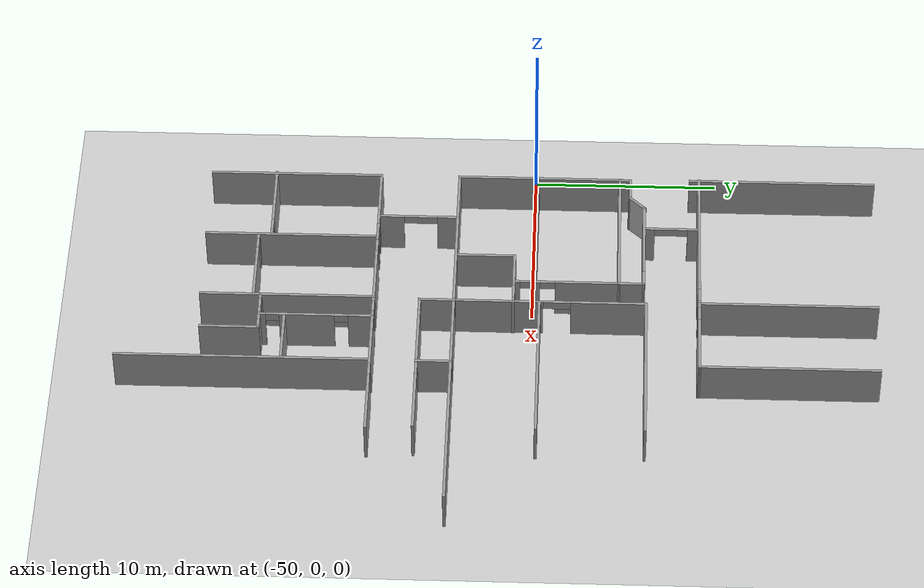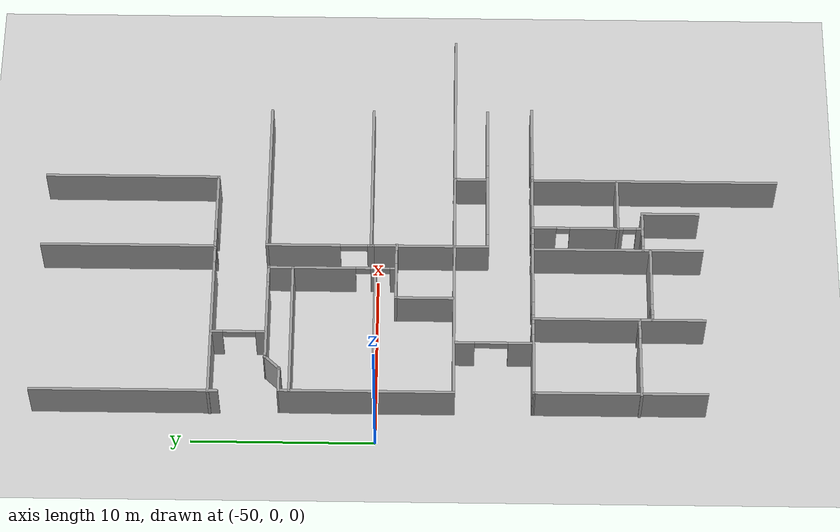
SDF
<sdf version="1.7">
 <world name="default">
  <model name="ground_plane">
   <static>1</static>
   <link name="link">
    <collision name="collision">
     <geometry><plane><normal>0 0 1</normal><size>100 100</size></plane></geometry>
     <surface>
      <contact><collide_bitmask>65535</collide_bitmask></contact>
      <friction><ode><mu>100</mu><mu2>50</mu2></ode></friction>
     </surface>
    </collision>
    <visual name="visual">
     <cast_shadows>0</cast_shadows>
     <geometry><plane><normal>0 0 1</normal><size>100 100</size></plane></geometry>
     <material>
      <script><uri>file://media/materials/scripts/gazebo.material</uri><name>Gazebo/Grey</name></script>
     </material>
    </visual>
   </link>
  </model>
  <model name="anglo_3_andar">
   <pose>-0.36557 -0.844839 0 0 -0 0</pose>
   <link name="Wall_120">
    <collision name="Wall_120_Collision">
     <geometry><box><size>9.75 0.15 2.5</size></box></geometry>
     <pose>0 0 1.25 0 -0 0</pose>
    </collision>
    <visual name="Wall_120_Visual">
     <pose>0 0 1.25 0 -0 0</pose>
     <geometry><box><size>9.75 0.15 2.5</size></box></geometry>
     <material>
      <script><uri>file://media/materials/scripts/gazebo.material</uri><name>Gazebo/Grey</name></script>
      <ambient>1 1 1 1</ambient>
     </material>
     <meta><layer>0</layer></meta>
    </visual>
    <pose>-34.2723 14.6737 0 0 -0 -1.5708</pose>
   </link>
   <link name="Wall_129">
    <collision name="Wall_129_Collision">
     <geometry><box><size>9.75 0.15 2.5</size></box></geometry>
     <pose>0 0 1.25 0 -0 0</pose>
    </collision>
    <visual name="Wall_129_Visual">
     <pose>0 0 1.25 0 -0 0</pose>
     <geometry><box><size>9.75 0.15 2.5</size></box></geometry>
     <material>
      <script><uri>file://media/materials/scripts/gazebo.material</uri><name>Gazebo/Grey</name></script>
      <ambient>1 1 1 1</ambient>
     </material>
     <meta><layer>0</layer></meta>
    </visual>
    <pose>-38.7623 14.6837 0 0 -0 -1.5708</pose>
   </link>
   <link name="Wall_134">
    <pose>-36.5173 9.87868 0 0 -0 -0.002227</pose>
    <visual name="Wall_134_Visual_0">
     <pose>-2.14494 0 1.25 0 -0 0</pose>
     <geometry><box><size>0.350134 0.15 2.5</size></box></geometry>
     <material>
      <script><uri>file://media/materials/scripts/gazebo.material</uri><name>Gazebo/Grey</name></script>
      <ambient>1 1 1 1</ambient>
     </material>
     <meta><layer>0</layer></meta>
    </visual>
    <collision name="Wall_134_Collision_0">
     <geometry><box><size>0.350134 0.15 2.5</size></box></geometry>
     <pose>-2.14494 0 1.25 0 -0 0</pose>
    </collision>
    <visual name="Wall_134_Visual_1">
     <pose>0.605067 0 1.25 0 -0 0</pose>
     <geometry><box><size>3.42988 0.15 2.5</size></box></geometry>
     <material>
      <script><uri>file://media/materials/scripts/gazebo.material</uri><name>Gazebo/Grey</name></script>
      <ambient>1 1 1 1</ambient>
     </material>
     <meta><layer>0</layer></meta>
    </visual>
    <collision name="Wall_134_Collision_1">
     <geometry><box><size>3.42988 0.15 2.5</size></box></geometry>
     <pose>0.605067 0 1.25 0 -0 0</pose>
    </collision>
    <visual name="Wall_134_Visual_2">
     <pose>-1.53987 0 2.25 0 -0 0</pose>
     <geometry><box><size>0.86 0.15 0.5</size></box></geometry>
     <material>
      <script><uri>file://media/materials/scripts/gazebo.material</uri><name>Gazebo/Grey</name></script>
      <ambient>1 1 1 1</ambient>
     </material>
     <meta><layer>0</layer></meta>
    </visual>
    <collision name="Wall_134_Collision_2">
     <geometry><box><size>0.86 0.15 0.5</size></box></geometry>
     <pose>-1.53987 0 2.25 0 -0 0</pose>
    </collision>
   </link>
   <link name="Wall_136">
    <collision name="Wall_136_Collision">
     <geometry><box><size>10.25 0.15 2.5</size></box></geometry>
     <pose>0 0 1.25 0 -0 0</pose>
    </collision>
    <visual name="Wall_136_Visual">
     <pose>0 0 1.25 0 -0 0</pose>
     <geometry><box><size>10.25 0.15 2.5</size></box></geometry>
     <material>
      <script><uri>file://media/materials/scripts/gazebo.material</uri><name>Gazebo/Grey</name></script>
      <ambient>1 1 1 1</ambient>
     </material>
     <meta><layer>0</layer></meta>
    </visual>
    <pose>-47.8223 14.4537 0 0 -0 -1.5708</pose>
   </link>
   <link name="Wall_141">
    <pose>-43.3123 9.88368 0 0 -0 3.14159</pose>
    <visual name="Wall_141_Visual_0">
     <pose>-4.4925 0 1.25 0 -0 0</pose>
     <geometry><box><size>0.265001 0.15 2.5</size></box></geometry>
     <material>
      <script><uri>file://media/materials/scripts/gazebo.material</uri><name>Gazebo/Grey</name></script>
      <ambient>1 1 1 1</ambient>
     </material>
     <meta><layer>0</layer></meta>
    </visual>
    <collision name="Wall_141_Collision_0">
     <geometry><box><size>0.265001 0.15 2.5</size></box></geometry>
     <pose>-4.4925 0 1.25 0 -0 0</pose>
    </collision>
    <visual name="Wall_141_Visual_1">
     <pose>0.552501 0 1.25 0 -0 0</pose>
     <geometry><box><size>8.145 0.15 2.5</size></box></geometry>
     <material>
      <script><uri>file://media/materials/scripts/gazebo.material</uri><name>Gazebo/Grey</name></script>
      <ambient>1 1 1 1</ambient>
     </material>
     <meta><layer>0</layer></meta>
    </visual>
    <collision name="Wall_141_Collision_1">
     <geometry><box><size>8.145 0.15 2.5</size></box></geometry>
     <pose>0.552501 0 1.25 0 -0 0</pose>
    </collision>
    <visual name="Wall_141_Visual_2">
     <pose>-3.94 0 2.25 0 -0 0</pose>
     <geometry><box><size>0.84 0.15 0.5</size></box></geometry>
     <material>
      <script><uri>file://media/materials/scripts/gazebo.material</uri><name>Gazebo/Grey</name></script>
      <ambient>1 1 1 1</ambient>
     </material>
     <meta><layer>0</layer></meta>
    </visual>
    <collision name="Wall_141_Collision_2">
     <geometry><box><size>0.84 0.15 0.5</size></box></geometry>
     <pose>-3.94 0 2.25 0 -0 0</pose>
    </collision>
   </link>
   <link name="Wall_143">
    <pose>-44.1623 8.42868 0 0 -0 -1.5708</pose>
    <visual name="Wall_143_Visual_0">
     <pose>-1.155 0 1.25 0 -0 0</pose>
     <geometry><box><size>0.69 0.15 2.5</size></box></geometry>
     <material>
      <script><uri>file://media/materials/scripts/gazebo.material</uri><name>Gazebo/Grey</name></script>
      <ambient>1 1 1 1</ambient>
     </material>
     <meta><layer>0</layer></meta>
    </visual>
    <collision name="Wall_143_Collision_0">
     <geometry><box><size>0.69 0.15 2.5</size></box></geometry>
     <pose>-1.155 0 1.25 0 -0 0</pose>
    </collision>
    <visual name="Wall_143_Visual_1">
     <pose>1.24 0 1.25 0 -0 0</pose>
     <geometry><box><size>0.52 0.15 2.5</size></box></geometry>
     <material>
      <script><uri>file://media/materials/scripts/gazebo.material</uri><name>Gazebo/Grey</name></script>
      <ambient>1 1 1 1</ambient>
     </material>
     <meta><layer>0</layer></meta>
    </visual>
    <collision name="Wall_143_Collision_1">
     <geometry><box><size>0.52 0.15 2.5</size></box></geometry>
     <pose>1.24 0 1.25 0 -0 0</pose>
    </collision>
    <visual name="Wall_143_Visual_2">
     <pose>0.085 0 2.25 0 -0 0</pose>
     <geometry><box><size>1.79 0.15 0.5</size></box></geometry>
     <material>
      <script><uri>file://media/materials/scripts/gazebo.material</uri><name>Gazebo/Grey</name></script>
      <ambient>1 1 1 1</ambient>
     </material>
     <meta><layer>0</layer></meta>
    </visual>
    <collision name="Wall_143_Collision_2">
     <geometry><box><size>1.79 0.15 0.5</size></box></geometry>
     <pose>0.085 0 2.25 0 -0 0</pose>
    </collision>
   </link>
   <link name="Wall_150">
    <pose>-42.8923 6.87368 0 0 -0 3.14159</pose>
    <visual name="Wall_150_Visual_0">
     <pose>-2.8225 0 1.25 0 -0 0</pose>
     <geometry><box><size>0.105 0.15 2.5</size></box></geometry>
     <material>
      <script><uri>file://media/materials/scripts/gazebo.material</uri><name>Gazebo/Grey</name></script>
      <ambient>1 1 1 1</ambient>
     </material>
     <meta><layer>0</layer></meta>
    </visual>
    <collision name="Wall_150_Collision_0">
     <geometry><box><size>0.105 0.15 2.5</size></box></geometry>
     <pose>-2.8225 0 1.25 0 -0 0</pose>
    </collision>
    <visual name="Wall_150_Visual_1">
     <pose>0.5025 0 1.25 0 -0 0</pose>
     <geometry><box><size>4.745 0.15 2.5</size></box></geometry>
     <material>
      <script><uri>file://media/materials/scripts/gazebo.material</uri><name>Gazebo/Grey</name></script>
      <ambient>1 1 1 1</ambient>
     </material>
     <meta><layer>0</layer></meta>
    </visual>
    <collision name="Wall_150_Collision_1">
     <geometry><box><size>4.745 0.15 2.5</size></box></geometry>
     <pose>0.5025 0 1.25 0 -0 0</pose>
    </collision>
    <visual name="Wall_150_Visual_2">
     <pose>-2.32 0 2.25 0 -0 0</pose>
     <geometry><box><size>0.9 0.15 0.5</size></box></geometry>
     <material>
      <script><uri>file://media/materials/scripts/gazebo.material</uri><name>Gazebo/Grey</name></script>
      <ambient>1 1 1 1</ambient>
     </material>
     <meta><layer>0</layer></meta>
    </visual>
    <collision name="Wall_150_Collision_2">
     <geometry><box><size>0.9 0.15 0.5</size></box></geometry>
     <pose>-2.32 0 2.25 0 -0 0</pose>
    </collision>
   </link>
   <link name="Wall_151">
    <collision name="Wall_151_Collision">
     <geometry><box><size>1.21523 0.15 2.5</size></box></geometry>
     <pose>0 0 1.25 0 -0 0</pose>
    </collision>
    <visual name="Wall_151_Visual">
     <pose>0 0 1.25 0 -0 0</pose>
     <geometry><box><size>1.21523 0.15 2.5</size></box></geometry>
     <material>
      <script><uri>file://media/materials/scripts/gazebo.material</uri><name>Gazebo/Grey</name></script>
      <ambient>1 1 1 1</ambient>
     </material>
     <meta><layer>0</layer></meta>
    </visual>
    <pose>-46.0562 6.48477 0 0 -0 -2.323</pose>
   </link>
   <link name="Wall_152">
    <collision name="Wall_152_Collision">
     <geometry><box><size>1.5 0.15 2.5</size></box></geometry>
     <pose>0 0 1.25 0 -0 0</pose>
    </collision>
    <visual name="Wall_152_Visual">
     <pose>0 0 1.25 0 -0 0</pose>
     <geometry><box><size>1.5 0.15 2.5</size></box></geometry>
     <material>
      <script><uri>file://media/materials/scripts/gazebo.material</uri><name>Gazebo/Grey</name></script>
      <ambient>1 1 1 1</ambient>
     </material>
     <meta><layer>0</layer></meta>
    </visual>
    <pose>-47.0851 6.09586 0 0 -0 3.14159</pose>
   </link>
   <link name="Wall_154">
    <collision name="Wall_154_Collision">
     <geometry><box><size>1.49015 0.15 2.5</size></box></geometry>
     <pose>0 0 1.25 0 -0 0</pose>
    </collision>
    <visual name="Wall_154_Visual">
     <pose>0 0 1.25 0 -0 0</pose>
     <geometry><box><size>1.49015 0.15 2.5</size></box></geometry>
     <material>
      <script><uri>file://media/materials/scripts/gazebo.material</uri><name>Gazebo/Grey</name></script>
      <ambient>1 1 1 1</ambient>
     </material>
     <meta><layer>0</layer></meta>
    </visual>
    <pose>-40.0923 6.20368 0 0 -0 -1.5708</pose>
   </link>
   <link name="Wall_157">
    <collision name="Wall_157_Collision">
     <geometry><box><size>7.81003 0.15 2.5</size></box></geometry>
     <pose>0 0 1.25 0 -0 0</pose>
    </collision>
    <visual name="Wall_157_Visual">
     <pose>0 0 1.25 0 -0 0</pose>
     <geometry><box><size>7.81003 0.15 2.5</size></box></geometry>
     <material>
      <script><uri>file://media/materials/scripts/gazebo.material</uri><name>Gazebo/Grey</name></script>
      <ambient>1 1 1 1</ambient>
     </material>
     <meta><layer>0</layer></meta>
    </visual>
    <pose>-43.9223 5.52368 0 0 -0 0.002611</pose>
   </link>
   <link name="Wall_160">
    <collision name="Wall_160_Collision">
     <geometry><box><size>5.25001 0.15 2.5</size></box></geometry>
     <pose>0 0 1.25 0 -0 0</pose>
    </collision>
    <visual name="Wall_160_Visual">
     <pose>0 0 1.25 0 -0 0</pose>
     <geometry><box><size>5.25001 0.15 2.5</size></box></geometry>
     <material>
      <script><uri>file://media/materials/scripts/gazebo.material</uri><name>Gazebo/Grey</name></script>
      <ambient>1 1 1 1</ambient>
     </material>
     <meta><layer>0</layer></meta>
    </visual>
    <pose>-47.7651 3.54586 0 0 -0 -1.57276</pose>
   </link>
   <link name="Wall_164">
    <collision name="Wall_164_Collision">
     <geometry><box><size>7.76 0.15 2.5</size></box></geometry>
     <pose>0 0 1.25 0 -0 0</pose>
    </collision>
    <visual name="Wall_164_Visual">
     <pose>0 0 1.25 0 -0 0</pose>
     <geometry><box><size>7.76 0.15 2.5</size></box></geometry>
     <material>
      <script><uri>file://media/materials/scripts/gazebo.material</uri><name>Gazebo/Grey</name></script>
      <ambient>1 1 1 1</ambient>
     </material>
     <meta><layer>0</layer></meta>
    </visual>
    <pose>-43.9651 0.995863 0 0 -0 0</pose>
   </link>
   <link name="Wall_172">
    <collision name="Wall_172_Collision">
     <geometry><box><size>22.77 0.15 2.5</size></box></geometry>
     <pose>0 0 1.25 0 -0 0</pose>
    </collision>
    <visual name="Wall_172_Visual">
     <pose>0 0 1.25 0 -0 0</pose>
     <geometry><box><size>22.77 0.15 2.5</size></box></geometry>
     <material>
      <script><uri>file://media/materials/scripts/gazebo.material</uri><name>Gazebo/Grey</name></script>
      <ambient>1 1 1 1</ambient>
     </material>
     <meta><layer>0</layer></meta>
    </visual>
    <pose>-36.3901 -3.36414 0 0 -0 -0.000884</pose>
   </link>
   <link name="Wall_175">
    <pose>-40.2673 -0.15632 0 0 -0 3.14159</pose>
    <visual name="Wall_175_Visual_0">
     <pose>-1.535 0 1.25 0 -0 0</pose>
     <geometry><box><size>0.429998 0.15 2.5</size></box></geometry>
     <material>
      <script><uri>file://media/materials/scripts/gazebo.material</uri><name>Gazebo/Grey</name></script>
      <ambient>1 1 1 1</ambient>
     </material>
     <meta><layer>0</layer></meta>
    </visual>
    <collision name="Wall_175_Collision_0">
     <geometry><box><size>0.429998 0.15 2.5</size></box></geometry>
     <pose>-1.535 0 1.25 0 -0 0</pose>
    </collision>
    <visual name="Wall_175_Visual_1">
     <pose>0.634999 0 1.25 0 -0 0</pose>
     <geometry><box><size>2.23 0.15 2.5</size></box></geometry>
     <material>
      <script><uri>file://media/materials/scripts/gazebo.material</uri><name>Gazebo/Grey</name></script>
      <ambient>1 1 1 1</ambient>
     </material>
     <meta><layer>0</layer></meta>
    </visual>
    <collision name="Wall_175_Collision_1">
     <geometry><box><size>2.23 0.15 2.5</size></box></geometry>
     <pose>0.634999 0 1.25 0 -0 0</pose>
    </collision>
    <visual name="Wall_175_Visual_2">
     <pose>-0.900002 0 2.25 0 -0 0</pose>
     <geometry><box><size>0.84 0.15 0.5</size></box></geometry>
     <material>
      <script><uri>file://media/materials/scripts/gazebo.material</uri><name>Gazebo/Grey</name></script>
      <ambient>1 1 1 1</ambient>
     </material>
     <meta><layer>0</layer></meta>
    </visual>
    <collision name="Wall_175_Collision_2">
     <geometry><box><size>0.84 0.15 0.5</size></box></geometry>
     <pose>-0.900002 0 2.25 0 -0 0</pose>
    </collision>
   </link>
   <link name="Wall_176">
    <collision name="Wall_176_Collision">
     <geometry><box><size>3.25 0.15 2.5</size></box></geometry>
     <pose>0 0 1.25 0 -0 0</pose>
    </collision>
    <visual name="Wall_176_Visual">
     <pose>0 0 1.25 0 -0 0</pose>
     <geometry><box><size>3.25 0.15 2.5</size></box></geometry>
     <material>
      <script><uri>file://media/materials/scripts/gazebo.material</uri><name>Gazebo/Grey</name></script>
      <ambient>1 1 1 1</ambient>
     </material>
     <meta><layer>0</layer></meta>
    </visual>
    <pose>-41.9423 -1.70632 0 0 -0 -1.5708</pose>
   </link>
   <link name="Wall_180">
    <pose>-40.0923 2.73368 0 0 -0 -1.5708</pose>
    <visual name="Wall_180_Visual_0">
     <pose>-1.105 0 1.25 0 -0 0</pose>
     <geometry><box><size>3.54 0.15 2.5</size></box></geometry>
     <material>
      <script><uri>file://media/materials/scripts/gazebo.material</uri><name>Gazebo/Grey</name></script>
      <ambient>1 1 1 1</ambient>
     </material>
     <meta><layer>0</layer></meta>
    </visual>
    <collision name="Wall_180_Collision_0">
     <geometry><box><size>3.54 0.15 2.5</size></box></geometry>
     <pose>-1.105 0 1.25 0 -0 0</pose>
    </collision>
    <visual name="Wall_180_Visual_1">
     <pose>1.635 0 1.25 0 -0 0</pose>
     <geometry><box><size>0.32 0.15 2.5</size></box></geometry>
     <material>
      <script><uri>file://media/materials/scripts/gazebo.material</uri><name>Gazebo/Grey</name></script>
      <ambient>1 1 1 1</ambient>
     </material>
     <meta><layer>0</layer></meta>
    </visual>
    <collision name="Wall_180_Collision_1">
     <geometry><box><size>0.32 0.15 2.5</size></box></geometry>
     <pose>1.635 0 1.25 0 -0 0</pose>
    </collision>
    <visual name="Wall_180_Visual_2">
     <pose>2.71 0 1.25 0 -0 0</pose>
     <geometry><box><size>0.33 0.15 2.5</size></box></geometry>
     <material>
      <script><uri>file://media/materials/scripts/gazebo.material</uri><name>Gazebo/Grey</name></script>
      <ambient>1 1 1 1</ambient>
     </material>
     <meta><layer>0</layer></meta>
    </visual>
    <collision name="Wall_180_Collision_2">
     <geometry><box><size>0.33 0.15 2.5</size></box></geometry>
     <pose>2.71 0 1.25 0 -0 0</pose>
    </collision>
    <visual name="Wall_180_Visual_3">
     <pose>1.07 0 2.25 0 -0 0</pose>
     <geometry><box><size>0.81 0.15 0.5</size></box></geometry>
     <material>
      <script><uri>file://media/materials/scripts/gazebo.material</uri><name>Gazebo/Grey</name></script>
      <ambient>1 1 1 1</ambient>
     </material>
     <meta><layer>0</layer></meta>
    </visual>
    <collision name="Wall_180_Collision_3">
     <geometry><box><size>0.81 0.15 0.5</size></box></geometry>
     <pose>1.07 0 2.25 0 -0 0</pose>
    </collision>
    <visual name="Wall_180_Visual_4">
     <pose>2.17 0 2.25 0 -0 0</pose>
     <geometry><box><size>0.75 0.15 0.5</size></box></geometry>
     <material>
      <script><uri>file://media/materials/scripts/gazebo.material</uri><name>Gazebo/Grey</name></script>
      <ambient>1 1 1 1</ambient>
     </material>
     <meta><layer>0</layer></meta>
    </visual>
    <collision name="Wall_180_Collision_4">
     <geometry><box><size>0.75 0.15 0.5</size></box></geometry>
     <pose>2.17 0 2.25 0 -0 0</pose>
    </collision>
   </link>
   <link name="Wall_185">
    <collision name="Wall_185_Collision">
     <geometry><box><size>4.75 0.15 2.5</size></box></geometry>
     <pose>0 0 1.25 0 -0 0</pose>
    </collision>
    <visual name="Wall_185_Visual">
     <pose>0 0 1.25 0 -0 0</pose>
     <geometry><box><size>4.75 0.15 2.5</size></box></geometry>
     <material>
      <script><uri>file://media/materials/scripts/gazebo.material</uri><name>Gazebo/Grey</name></script>
      <ambient>1 1 1 1</ambient>
     </material>
     <meta><layer>0</layer></meta>
    </visual>
    <pose>-38.6423 -1.04632 0 0 -0 -1.5708</pose>
   </link>
   <link name="Wall_187">
    <collision name="Wall_187_Collision">
     <geometry><box><size>9 0.15 2.5</size></box></geometry>
     <pose>0 0 1.25 0 -0 0</pose>
    </collision>
    <visual name="Wall_187_Visual">
     <pose>0 0 1.25 0 -0 0</pose>
     <geometry><box><size>9 0.15 2.5</size></box></geometry>
     <material>
      <script><uri>file://media/materials/scripts/gazebo.material</uri><name>Gazebo/Grey</name></script>
      <ambient>1 1 1 1</ambient>
     </material>
     <meta><layer>0</layer></meta>
    </visual>
    <pose>-34.2173 1.25368 0 0 -0 0</pose>
   </link>
   <link name="Wall_191">
    <pose>-38.6523 4.08868 0 0 -0 -1.5708</pose>
    <visual name="Wall_191_Visual_0">
     <pose>-0.93 0 1.25 0 -0 0</pose>
     <geometry><box><size>4.14 0.15 2.5</size></box></geometry>
     <material>
      <script><uri>file://media/materials/scripts/gazebo.material</uri><name>Gazebo/Grey</name></script>
      <ambient>1 1 1 1</ambient>
     </material>
     <meta><layer>0</layer></meta>
    </visual>
    <collision name="Wall_191_Collision_0">
     <geometry><box><size>4.14 0.15 2.5</size></box></geometry>
     <pose>-0.93 0 1.25 0 -0 0</pose>
    </collision>
    <visual name="Wall_191_Visual_1">
     <pose>2.815 0 1.25 0 -0 0</pose>
     <geometry><box><size>0.37 0.15 2.5</size></box></geometry>
     <material>
      <script><uri>file://media/materials/scripts/gazebo.material</uri><name>Gazebo/Grey</name></script>
      <ambient>1 1 1 1</ambient>
     </material>
     <meta><layer>0</layer></meta>
    </visual>
    <collision name="Wall_191_Collision_1">
     <geometry><box><size>0.37 0.15 2.5</size></box></geometry>
     <pose>2.815 0 1.25 0 -0 0</pose>
    </collision>
    <visual name="Wall_191_Visual_2">
     <pose>1.885 0 2.25 0 -0 0</pose>
     <geometry><box><size>1.49 0.15 0.5</size></box></geometry>
     <material>
      <script><uri>file://media/materials/scripts/gazebo.material</uri><name>Gazebo/Grey</name></script>
      <ambient>1 1 1 1</ambient>
     </material>
     <meta><layer>0</layer></meta>
    </visual>
    <collision name="Wall_191_Collision_2">
     <geometry><box><size>1.49 0.15 0.5</size></box></geometry>
     <pose>1.885 0 2.25 0 -0 0</pose>
    </collision>
   </link>
   <link name="Wall_193">
    <collision name="Wall_193_Collision">
     <geometry><box><size>9 0.15 2.5</size></box></geometry>
     <pose>0 0 1.25 0 -0 0</pose>
    </collision>
    <visual name="Wall_193_Visual">
     <pose>0 0 1.25 0 -0 0</pose>
     <geometry><box><size>9 0.15 2.5</size></box></geometry>
     <material>
      <script><uri>file://media/materials/scripts/gazebo.material</uri><name>Gazebo/Grey</name></script>
      <ambient>1 1 1 1</ambient>
     </material>
     <meta><layer>0</layer></meta>
    </visual>
    <pose>-34.2273 7.01368 0 0 -0 0</pose>
   </link>
   <link name="Wall_209">
    <collision name="Wall_209_Collision">
     <geometry><box><size>2 0.15 2.5</size></box></geometry>
     <pose>0 0 1.25 0 -0 0</pose>
    </collision>
    <visual name="Wall_209_Visual">
     <pose>0 0 1.25 0 -0 0</pose>
     <geometry><box><size>2 0.15 2.5</size></box></geometry>
     <material>
      <script><uri>file://media/materials/scripts/gazebo.material</uri><name>Gazebo/Grey</name></script>
      <ambient>1 1 1 1</ambient>
     </material>
     <meta><layer>0</layer></meta>
    </visual>
    <pose>-38.6423 -4.27132 0 0 -0 -1.5708</pose>
   </link>
   <link name="Wall_212">
    <pose>-34.2173 -5.19632 0 0 -0 0</pose>
    <visual name="Wall_212_Visual_0">
     <pose>-4.435 0 1.25 0 -0 0</pose>
     <geometry><box><size>0.130001 0.15 2.5</size></box></geometry>
     <material>
      <script><uri>file://media/materials/scripts/gazebo.material</uri><name>Gazebo/Grey</name></script>
      <ambient>1 1 1 1</ambient>
     </material>
     <meta><layer>0</layer></meta>
    </visual>
    <collision name="Wall_212_Collision_0">
     <geometry><box><size>0.130001 0.15 2.5</size></box></geometry>
     <pose>-4.435 0 1.25 0 -0 0</pose>
    </collision>
    <visual name="Wall_212_Visual_1">
     <pose>-1.765 0 1.25 0 -0 0</pose>
     <geometry><box><size>3.71 0.15 2.5</size></box></geometry>
     <material>
      <script><uri>file://media/materials/scripts/gazebo.material</uri><name>Gazebo/Grey</name></script>
      <ambient>1 1 1 1</ambient>
     </material>
     <meta><layer>0</layer></meta>
    </visual>
    <collision name="Wall_212_Collision_1">
     <geometry><box><size>3.71 0.15 2.5</size></box></geometry>
     <pose>-1.765 0 1.25 0 -0 0</pose>
    </collision>
    <visual name="Wall_212_Visual_2">
     <pose>2.68 0 1.25 0 -0 0</pose>
     <geometry><box><size>3.64 0.15 2.5</size></box></geometry>
     <material>
      <script><uri>file://media/materials/scripts/gazebo.material</uri><name>Gazebo/Grey</name></script>
      <ambient>1 1 1 1</ambient>
     </material>
     <meta><layer>0</layer></meta>
    </visual>
    <collision name="Wall_212_Collision_2">
     <geometry><box><size>3.64 0.15 2.5</size></box></geometry>
     <pose>2.68 0 1.25 0 -0 0</pose>
    </collision>
    <visual name="Wall_212_Visual_3">
     <pose>-3.995 0 2.25 0 -0 0</pose>
     <geometry><box><size>0.75 0.15 0.5</size></box></geometry>
     <material>
      <script><uri>file://media/materials/scripts/gazebo.material</uri><name>Gazebo/Grey</name></script>
      <ambient>1 1 1 1</ambient>
     </material>
     <meta><layer>0</layer></meta>
    </visual>
    <collision name="Wall_212_Collision_3">
     <geometry><box><size>0.75 0.15 0.5</size></box></geometry>
     <pose>-3.995 0 2.25 0 -0 0</pose>
    </collision>
    <visual name="Wall_212_Visual_4">
     <pose>0.475002 0 2.25 0 -0 0</pose>
     <geometry><box><size>0.77 0.15 0.5</size></box></geometry>
     <material>
      <script><uri>file://media/materials/scripts/gazebo.material</uri><name>Gazebo/Grey</name></script>
      <ambient>1 1 1 1</ambient>
     </material>
     <meta><layer>0</layer></meta>
    </visual>
    <collision name="Wall_212_Collision_4">
     <geometry><box><size>0.77 0.15 0.5</size></box></geometry>
     <pose>0.475002 0 2.25 0 -0 0</pose>
    </collision>
   </link>
   <link name="Wall_215">
    <collision name="Wall_215_Collision">
     <geometry><box><size>2 0.15 2.5</size></box></geometry>
     <pose>0 0 1.25 0 -0 0</pose>
    </collision>
    <visual name="Wall_215_Visual">
     <pose>0 0 1.25 0 -0 0</pose>
     <geometry><box><size>2 0.15 2.5</size></box></geometry>
     <material>
      <script><uri>file://media/materials/scripts/gazebo.material</uri><name>Gazebo/Grey</name></script>
      <ambient>1 1 1 1</ambient>
     </material>
     <meta><layer>0</layer></meta>
    </visual>
    <pose>-34.2723 -4.28132 0 0 -0 -1.5708</pose>
   </link>
   <link name="Wall_275">
    <collision name="Wall_275_Collision">
     <geometry><box><size>4.5 0.15 2.5</size></box></geometry>
     <pose>0 0 1.25 0 -0 0</pose>
    </collision>
    <visual name="Wall_275_Visual">
     <pose>0 0 1.25 0 -0 0</pose>
     <geometry><box><size>4.5 0.15 2.5</size></box></geometry>
     <material>
      <script><uri>file://media/materials/scripts/gazebo.material</uri><name>Gazebo/Grey</name></script>
      <ambient>1 1 1 1</ambient>
     </material>
     <meta><layer>0</layer></meta>
    </visual>
    <pose>-47.7701 -1.17914 0 0 -0 -1.5708</pose>
   </link>
   <link name="Wall_277">
    <pose>-44.7023 -5.50632 0 0 -0 -1.5708</pose>
    <visual name="Wall_277_Visual_0">
     <pose>-1.575 0 1.25 0 -0 0</pose>
     <geometry><box><size>1.1 0.15 2.5</size></box></geometry>
     <material>
      <script><uri>file://media/materials/scripts/gazebo.material</uri><name>Gazebo/Grey</name></script>
      <ambient>1 1 1 1</ambient>
     </material>
     <meta><layer>0</layer></meta>
    </visual>
    <collision name="Wall_277_Collision_0">
     <geometry><box><size>1.1 0.15 2.5</size></box></geometry>
     <pose>-1.575 0 1.25 0 -0 0</pose>
    </collision>
    <visual name="Wall_277_Visual_1">
     <pose>1.46 0 1.25 0 -0 0</pose>
     <geometry><box><size>1.33 0.15 2.5</size></box></geometry>
     <material>
      <script><uri>file://media/materials/scripts/gazebo.material</uri><name>Gazebo/Grey</name></script>
      <ambient>1 1 1 1</ambient>
     </material>
     <meta><layer>0</layer></meta>
    </visual>
    <collision name="Wall_277_Collision_1">
     <geometry><box><size>1.33 0.15 2.5</size></box></geometry>
     <pose>1.46 0 1.25 0 -0 0</pose>
    </collision>
    <visual name="Wall_277_Visual_2">
     <pose>-0.115 0 2.25 0 -0 0</pose>
     <geometry><box><size>1.82 0.15 0.5</size></box></geometry>
     <material>
      <script><uri>file://media/materials/scripts/gazebo.material</uri><name>Gazebo/Grey</name></script>
      <ambient>1 1 1 1</ambient>
     </material>
     <meta><layer>0</layer></meta>
    </visual>
    <collision name="Wall_277_Collision_2">
     <geometry><box><size>1.82 0.15 0.5</size></box></geometry>
     <pose>-0.115 0 2.25 0 -0 0</pose>
    </collision>
   </link>
   <link name="Wall_285">
    <pose>-38.7023 -7.68632 0 0 -0 3.14159</pose>
    <visual name="Wall_285_Visual_0">
     <pose>-7.2925 0 1.25 0 -0 0</pose>
     <geometry><box><size>3.665 0.15 2.5</size></box></geometry>
     <material>
      <script><uri>file://media/materials/scripts/gazebo.material</uri><name>Gazebo/Grey</name></script>
      <ambient>1 1 1 1</ambient>
     </material>
     <meta><layer>0</layer></meta>
    </visual>
    <collision name="Wall_285_Collision_0">
     <geometry><box><size>3.665 0.15 2.5</size></box></geometry>
     <pose>-7.2925 0 1.25 0 -0 0</pose>
    </collision>
    <visual name="Wall_285_Visual_1">
     <pose>-2.8175 0 1.25 0 -0 0</pose>
     <geometry><box><size>3.705 0.15 2.5</size></box></geometry>
     <material>
      <script><uri>file://media/materials/scripts/gazebo.material</uri><name>Gazebo/Grey</name></script>
      <ambient>1 1 1 1</ambient>
     </material>
     <meta><layer>0</layer></meta>
    </visual>
    <collision name="Wall_285_Collision_1">
     <geometry><box><size>3.705 0.15 2.5</size></box></geometry>
     <pose>-2.8175 0 1.25 0 -0 0</pose>
    </collision>
    <visual name="Wall_285_Visual_2">
     <pose>1.585 0 1.25 0 -0 0</pose>
     <geometry><box><size>3.68 0.15 2.5</size></box></geometry>
     <material>
      <script><uri>file://media/materials/scripts/gazebo.material</uri><name>Gazebo/Grey</name></script>
      <ambient>1 1 1 1</ambient>
     </material>
     <meta><layer>0</layer></meta>
    </visual>
    <collision name="Wall_285_Collision_2">
     <geometry><box><size>3.68 0.15 2.5</size></box></geometry>
     <pose>1.585 0 1.25 0 -0 0</pose>
    </collision>
    <visual name="Wall_285_Visual_3">
     <pose>4.49 0 1.25 0 -0 0</pose>
     <geometry><box><size>0.550004 0.15 2.5</size></box></geometry>
     <material>
      <script><uri>file://media/materials/scripts/gazebo.material</uri><name>Gazebo/Grey</name></script>
      <ambient>1 1 1 1</ambient>
     </material>
     <meta><layer>0</layer></meta>
    </visual>
    <collision name="Wall_285_Collision_3">
     <geometry><box><size>0.550004 0.15 2.5</size></box></geometry>
     <pose>4.49 0 1.25 0 -0 0</pose>
    </collision>
    <visual name="Wall_285_Visual_4">
     <pose>7.285 0 1.25 0 -0 0</pose>
     <geometry><box><size>3.68 0.15 2.5</size></box></geometry>
     <material>
      <script><uri>file://media/materials/scripts/gazebo.material</uri><name>Gazebo/Grey</name></script>
      <ambient>1 1 1 1</ambient>
     </material>
     <meta><layer>0</layer></meta>
    </visual>
    <collision name="Wall_285_Collision_4">
     <geometry><box><size>3.68 0.15 2.5</size></box></geometry>
     <pose>7.285 0 1.25 0 -0 0</pose>
    </collision>
    <visual name="Wall_285_Visual_5">
     <pose>-5.065 0 2.25 0 -0 0</pose>
     <geometry><box><size>0.79 0.15 0.5</size></box></geometry>
     <material>
      <script><uri>file://media/materials/scripts/gazebo.material</uri><name>Gazebo/Grey</name></script>
      <ambient>1 1 1 1</ambient>
     </material>
     <meta><layer>0</layer></meta>
    </visual>
    <collision name="Wall_285_Collision_5">
     <geometry><box><size>0.79 0.15 0.5</size></box></geometry>
     <pose>-5.065 0 2.25 0 -0 0</pose>
    </collision>
    <visual name="Wall_285_Visual_6">
     <pose>-0.609997 0 2.25 0 -0 0</pose>
     <geometry><box><size>0.71 0.15 0.5</size></box></geometry>
     <material>
      <script><uri>file://media/materials/scripts/gazebo.material</uri><name>Gazebo/Grey</name></script>
      <ambient>1 1 1 1</ambient>
     </material>
     <meta><layer>0</layer></meta>
    </visual>
    <collision name="Wall_285_Collision_6">
     <geometry><box><size>0.71 0.15 0.5</size></box></geometry>
     <pose>-0.609997 0 2.25 0 -0 0</pose>
    </collision>
    <visual name="Wall_285_Visual_7">
     <pose>3.82 0 2.25 0 -0 0</pose>
     <geometry><box><size>0.79 0.15 0.5</size></box></geometry>
     <material>
      <script><uri>file://media/materials/scripts/gazebo.material</uri><name>Gazebo/Grey</name></script>
      <ambient>1 1 1 1</ambient>
     </material>
     <meta><layer>0</layer></meta>
    </visual>
    <collision name="Wall_285_Collision_7">
     <geometry><box><size>0.79 0.15 0.5</size></box></geometry>
     <pose>3.82 0 2.25 0 -0 0</pose>
    </collision>
    <visual name="Wall_285_Visual_8">
     <pose>5.105 0 2.25 0 -0 0</pose>
     <geometry><box><size>0.68 0.15 0.5</size></box></geometry>
     <material>
      <script><uri>file://media/materials/scripts/gazebo.material</uri><name>Gazebo/Grey</name></script>
      <ambient>1 1 1 1</ambient>
     </material>
     <meta><layer>0</layer></meta>
    </visual>
    <collision name="Wall_285_Collision_8">
     <geometry><box><size>0.68 0.15 0.5</size></box></geometry>
     <pose>5.105 0 2.25 0 -0 0</pose>
    </collision>
   </link>
   <link name="Wall_287">
    <collision name="Wall_287_Collision">
     <geometry><box><size>9.48002 0.15 2.5</size></box></geometry>
     <pose>0 0 1.25 0 -0 0</pose>
    </collision>
    <visual name="Wall_287_Visual">
     <pose>0 0 1.25 0 -0 0</pose>
     <geometry><box><size>9.48002 0.15 2.5</size></box></geometry>
     <material>
      <script><uri>file://media/materials/scripts/gazebo.material</uri><name>Gazebo/Grey</name></script>
      <ambient>1 1 1 1</ambient>
     </material>
     <meta><layer>0</layer></meta>
    </visual>
    <pose>-47.7423 -12.3513 0 0 -0 -1.56865</pose>
   </link>
   <link name="Wall_293">
    <collision name="Wall_293_Collision">
     <geometry><box><size>9.5 0.15 2.5</size></box></geometry>
     <pose>0 0 1.25 0 -0 0</pose>
    </collision>
    <visual name="Wall_293_Visual">
     <pose>0 0 1.25 0 -0 0</pose>
     <geometry><box><size>9.5 0.15 2.5</size></box></geometry>
     <material>
      <script><uri>file://media/materials/scripts/gazebo.material</uri><name>Gazebo/Grey</name></script>
      <ambient>1 1 1 1</ambient>
     </material>
     <meta><layer>0</layer></meta>
    </visual>
    <pose>-43.1723 -12.3613 0 0 -0 -1.5708</pose>
   </link>
   <link name="Wall_295">
    <pose>-45.5123 -13.4863 0 0 -0 0</pose>
    <visual name="Wall_295_Visual_0">
     <pose>-0.577499 0 1.25 0 -0 0</pose>
     <geometry><box><size>3.595 0.15 2.5</size></box></geometry>
     <material>
      <script><uri>file://media/materials/scripts/gazebo.material</uri><name>Gazebo/Grey</name></script>
      <ambient>1 1 1 1</ambient>
     </material>
     <meta><layer>0</layer></meta>
    </visual>
    <collision name="Wall_295_Collision_0">
     <geometry><box><size>3.595 0.15 2.5</size></box></geometry>
     <pose>-0.577499 0 1.25 0 -0 0</pose>
    </collision>
    <visual name="Wall_295_Visual_1">
     <pose>2.1725 0 1.25 0 -0 0</pose>
     <geometry><box><size>0.404999 0.15 2.5</size></box></geometry>
     <material>
      <script><uri>file://media/materials/scripts/gazebo.material</uri><name>Gazebo/Grey</name></script>
      <ambient>1 1 1 1</ambient>
     </material>
     <meta><layer>0</layer></meta>
    </visual>
    <collision name="Wall_295_Collision_1">
     <geometry><box><size>0.404999 0.15 2.5</size></box></geometry>
     <pose>2.1725 0 1.25 0 -0 0</pose>
    </collision>
    <visual name="Wall_295_Visual_2">
     <pose>1.595 0 2.25 0 -0 0</pose>
     <geometry><box><size>0.75 0.15 0.5</size></box></geometry>
     <material>
      <script><uri>file://media/materials/scripts/gazebo.material</uri><name>Gazebo/Grey</name></script>
      <ambient>1 1 1 1</ambient>
     </material>
     <meta><layer>0</layer></meta>
    </visual>
    <collision name="Wall_295_Collision_2">
     <geometry><box><size>0.75 0.15 0.5</size></box></geometry>
     <pose>1.595 0 2.25 0 -0 0</pose>
    </collision>
   </link>
   <link name="Wall_297">
    <collision name="Wall_297_Collision">
     <geometry><box><size>9.5 0.15 2.5</size></box></geometry>
     <pose>0 0 1.25 0 -0 0</pose>
    </collision>
    <visual name="Wall_297_Visual">
     <pose>0 0 1.25 0 -0 0</pose>
     <geometry><box><size>9.5 0.15 2.5</size></box></geometry>
     <material>
      <script><uri>file://media/materials/scripts/gazebo.material</uri><name>Gazebo/Grey</name></script>
      <ambient>1 1 1 1</ambient>
     </material>
     <meta><layer>0</layer></meta>
    </visual>
    <pose>-38.7623 -12.3613 0 0 -0 -1.5708</pose>
   </link>
   <link name="Wall_299">
    <pose>-40.9873 -14.1863 0 0 -0 0</pose>
    <visual name="Wall_299_Visual_0">
     <pose>-2.055 0 1.25 0 -0 0</pose>
     <geometry><box><size>0.389997 0.15 2.5</size></box></geometry>
     <material>
      <script><uri>file://media/materials/scripts/gazebo.material</uri><name>Gazebo/Grey</name></script>
      <ambient>1 1 1 1</ambient>
     </material>
     <meta><layer>0</layer></meta>
    </visual>
    <collision name="Wall_299_Collision_0">
     <geometry><box><size>0.389997 0.15 2.5</size></box></geometry>
     <pose>-2.055 0 1.25 0 -0 0</pose>
    </collision>
    <visual name="Wall_299_Visual_1">
     <pose>0.539998 0 1.25 0 -0 0</pose>
     <geometry><box><size>3.42 0.15 2.5</size></box></geometry>
     <material>
      <script><uri>file://media/materials/scripts/gazebo.material</uri><name>Gazebo/Grey</name></script>
      <ambient>1 1 1 1</ambient>
     </material>
     <meta><layer>0</layer></meta>
    </visual>
    <collision name="Wall_299_Collision_1">
     <geometry><box><size>3.42 0.15 2.5</size></box></geometry>
     <pose>0.539998 0 1.25 0 -0 0</pose>
    </collision>
    <visual name="Wall_299_Visual_2">
     <pose>-1.515 0 2.25 0 -0 0</pose>
     <geometry><box><size>0.69 0.15 0.5</size></box></geometry>
     <material>
      <script><uri>file://media/materials/scripts/gazebo.material</uri><name>Gazebo/Grey</name></script>
      <ambient>1 1 1 1</ambient>
     </material>
     <meta><layer>0</layer></meta>
    </visual>
    <collision name="Wall_299_Collision_2">
     <geometry><box><size>0.69 0.15 0.5</size></box></geometry>
     <pose>-1.515 0 2.25 0 -0 0</pose>
    </collision>
   </link>
   <link name="Wall_301">
    <collision name="Wall_301_Collision">
     <geometry><box><size>13.75 0.15 2.5</size></box></geometry>
     <pose>0 0 1.25 0 -0 0</pose>
    </collision>
    <visual name="Wall_301_Visual">
     <pose>0 0 1.25 0 -0 0</pose>
     <geometry><box><size>13.75 0.15 2.5</size></box></geometry>
     <material>
      <script><uri>file://media/materials/scripts/gazebo.material</uri><name>Gazebo/Grey</name></script>
      <ambient>1 1 1 1</ambient>
     </material>
     <meta><layer>0</layer></meta>
    </visual>
    <pose>-34.2923 -14.5063 0 0 -0 -1.5708</pose>
   </link>
   <link name="Wall_303">
    <pose>-37.3723 -10.7263 0 0 -0 -1.5708</pose>
    <visual name="Wall_303_Visual_0">
     <pose>-2.425 0 1.25 0 -0 0</pose>
     <geometry><box><size>1.4 0.15 2.5</size></box></geometry>
     <material>
      <script><uri>file://media/materials/scripts/gazebo.material</uri><name>Gazebo/Grey</name></script>
      <ambient>1 1 1 1</ambient>
     </material>
     <meta><layer>0</layer></meta>
    </visual>
    <collision name="Wall_303_Collision_0">
     <geometry><box><size>1.4 0.15 2.5</size></box></geometry>
     <pose>-2.425 0 1.25 0 -0 0</pose>
    </collision>
    <visual name="Wall_303_Visual_1">
     <pose>0.499999 0 1.25 0 -0 0</pose>
     <geometry><box><size>2.97 0.15 2.5</size></box></geometry>
     <material>
      <script><uri>file://media/materials/scripts/gazebo.material</uri><name>Gazebo/Grey</name></script>
      <ambient>1 1 1 1</ambient>
     </material>
     <meta><layer>0</layer></meta>
    </visual>
    <collision name="Wall_303_Collision_1">
     <geometry><box><size>2.97 0.15 2.5</size></box></geometry>
     <pose>0.499999 0 1.25 0 -0 0</pose>
    </collision>
    <visual name="Wall_303_Visual_2">
     <pose>2.915 0 1.25 0 -0 0</pose>
     <geometry><box><size>0.420001 0.15 2.5</size></box></geometry>
     <material>
      <script><uri>file://media/materials/scripts/gazebo.material</uri><name>Gazebo/Grey</name></script>
      <ambient>1 1 1 1</ambient>
     </material>
     <meta><layer>0</layer></meta>
    </visual>
    <collision name="Wall_303_Collision_2">
     <geometry><box><size>0.420001 0.15 2.5</size></box></geometry>
     <pose>2.915 0 1.25 0 -0 0</pose>
    </collision>
    <visual name="Wall_303_Visual_3">
     <pose>-1.355 0 2.25 0 -0 0</pose>
     <geometry><box><size>0.74 0.15 0.5</size></box></geometry>
     <material>
      <script><uri>file://media/materials/scripts/gazebo.material</uri><name>Gazebo/Grey</name></script>
      <ambient>1 1 1 1</ambient>
     </material>
     <meta><layer>0</layer></meta>
    </visual>
    <collision name="Wall_303_Collision_3">
     <geometry><box><size>0.74 0.15 0.5</size></box></geometry>
     <pose>-1.355 0 2.25 0 -0 0</pose>
    </collision>
    <visual name="Wall_303_Visual_4">
     <pose>2.345 0 2.25 0 -0 0</pose>
     <geometry><box><size>0.72 0.15 0.5</size></box></geometry>
     <material>
      <script><uri>file://media/materials/scripts/gazebo.material</uri><name>Gazebo/Grey</name></script>
      <ambient>1 1 1 1</ambient>
     </material>
     <meta><layer>0</layer></meta>
    </visual>
    <collision name="Wall_303_Collision_4">
     <geometry><box><size>0.72 0.15 0.5</size></box></geometry>
     <pose>2.345 0 2.25 0 -0 0</pose>
    </collision>
   </link>
   <link name="Wall_306">
    <collision name="Wall_306_Collision">
     <geometry><box><size>3.25 0.15 2.5</size></box></geometry>
     <pose>0 0 1.25 0 -0 0</pose>
    </collision>
    <visual name="Wall_306_Visual">
     <pose>0 0 1.25 0 -0 0</pose>
     <geometry><box><size>3.25 0.15 2.5</size></box></geometry>
     <material>
      <script><uri>file://media/materials/scripts/gazebo.material</uri><name>Gazebo/Grey</name></script>
      <ambient>1 1 1 1</ambient>
     </material>
     <meta><layer>0</layer></meta>
    </visual>
    <pose>-35.8523 -12.4263 0 0 -0 0</pose>
   </link>
   <link name="Wall_312">
    <pose>-37.5773 -13.7863 0 0 -0 0</pose>
    <visual name="Wall_312_Visual_0">
     <pose>-1.085 0 1.25 0 -0 0</pose>
     <geometry><box><size>0.329997 0.15 2.5</size></box></geometry>
     <material>
      <script><uri>file://media/materials/scripts/gazebo.material</uri><name>Gazebo/Grey</name></script>
      <ambient>1 1 1 1</ambient>
     </material>
     <meta><layer>0</layer></meta>
    </visual>
    <collision name="Wall_312_Collision_0">
     <geometry><box><size>0.329997 0.15 2.5</size></box></geometry>
     <pose>-1.085 0 1.25 0 -0 0</pose>
    </collision>
    <visual name="Wall_312_Visual_1">
     <pose>0.499999 0 1.25 0 -0 0</pose>
     <geometry><box><size>1.5 0.15 2.5</size></box></geometry>
     <material>
      <script><uri>file://media/materials/scripts/gazebo.material</uri><name>Gazebo/Grey</name></script>
      <ambient>1 1 1 1</ambient>
     </material>
     <meta><layer>0</layer></meta>
    </visual>
    <collision name="Wall_312_Collision_1">
     <geometry><box><size>1.5 0.15 2.5</size></box></geometry>
     <pose>0.499999 0 1.25 0 -0 0</pose>
    </collision>
    <visual name="Wall_312_Visual_2">
     <pose>-0.585003 0 2.25 0 -0 0</pose>
     <geometry><box><size>0.67 0.15 0.5</size></box></geometry>
     <material>
      <script><uri>file://media/materials/scripts/gazebo.material</uri><name>Gazebo/Grey</name></script>
      <ambient>1 1 1 1</ambient>
     </material>
     <meta><layer>0</layer></meta>
    </visual>
    <collision name="Wall_312_Collision_2">
     <geometry><box><size>0.67 0.15 0.5</size></box></geometry>
     <pose>-0.585003 0 2.25 0 -0 0</pose>
    </collision>
   </link>
   <link name="Wall_314">
    <collision name="Wall_314_Collision">
     <geometry><box><size>3.25 0.15 2.5</size></box></geometry>
     <pose>0 0 1.25 0 -0 0</pose>
    </collision>
    <visual name="Wall_314_Visual">
     <pose>0 0 1.25 0 -0 0</pose>
     <geometry><box><size>3.25 0.15 2.5</size></box></geometry>
     <material>
      <script><uri>file://media/materials/scripts/gazebo.material</uri><name>Gazebo/Grey</name></script>
      <ambient>1 1 1 1</ambient>
     </material>
     <meta><layer>0</layer></meta>
    </visual>
    <pose>-36.4023 -15.3363 0 0 -0 -1.5708</pose>
   </link>
   <static>1</static>
  </model>
 </world>
</sdf>
